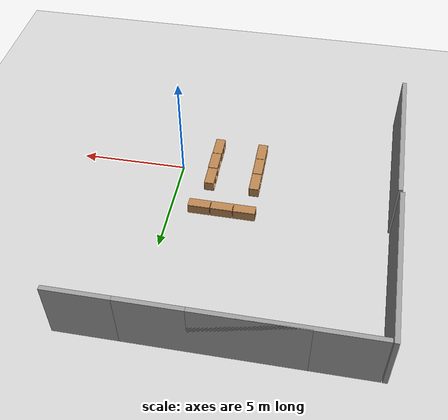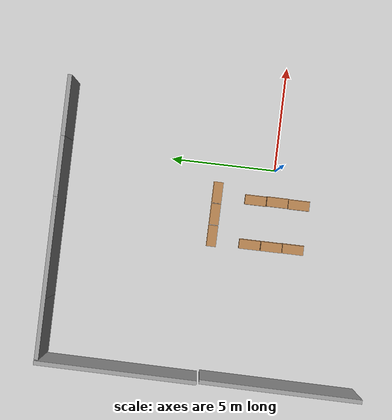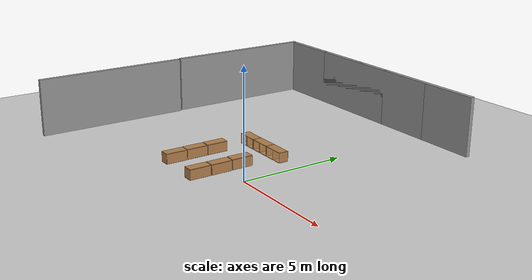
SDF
<sdf version="1.6">
 <world name="default">
  <model name="ground_plane">
   <static>1</static>
   <link name="link">
    <collision name="collision">
     <geometry><plane><normal>0 0 1</normal><size>100 100</size></plane></geometry>
     <surface><friction><ode><mu>100</mu><mu2>50</mu2></ode></friction></surface>
    </collision>
    <visual name="visual">
     <cast_shadows>0</cast_shadows>
     <geometry><plane><normal>0 0 1</normal><size>100 100</size></plane></geometry>
     <material>
      <script><uri>file://media/materials/scripts/gazebo.material</uri><name>Gazebo/Grey</name></script>
     </material>
    </visual>
   </link>
  </model>
  <model name="grey_wall1_clone_0">
   <pose>-6.25 10 0 0 -0 0</pose>
   <static>1</static>
   <link name="grey_wall::link">
    <pose>0 0 1.4 0 -0 0</pose>
    <collision name="collision"><geometry><box><size>7.5 0.2 2.8</size></box></geometry></collision>
    <visual name="visual">
     <cast_shadows>0</cast_shadows>
     <geometry><box><size>7.5 0.2 2.8</size></box></geometry>
     <material>
      <script>
       <uri>model://grey_wall/materials/scripts</uri>
       <uri>model://grey_wall/materials/textures</uri>
       <name>vrc/grey_wall</name>
      </script>
     </material>
    </visual>
   </link>
  </model>
  <model name="grey_wall1_clone_1">
   <pose>-3.45 10 0 0 -0 0</pose>
   <static>1</static>
   <link name="grey_wall::link">
    <pose>0 0 1.4 0 -0 0</pose>
    <collision name="collision"><geometry><box><size>7.5 0.2 2.8</size></box></geometry></collision>
    <visual name="visual">
     <cast_shadows>0</cast_shadows>
     <geometry><box><size>7.5 0.2 2.8</size></box></geometry>
     <material>
      <script>
       <uri>model://grey_wall/materials/scripts</uri>
       <uri>model://grey_wall/materials/textures</uri>
       <name>vrc/grey_wall</name>
      </script>
     </material>
    </visual>
   </link>
  </model>
  <model name="grey_wall1_clone_2">
   <pose>-0.65 10 0 0 -0 0</pose>
   <static>1</static>
   <link name="grey_wall::link">
    <pose>0 0 1.4 0 -0 0</pose>
    <collision name="collision"><geometry><box><size>7.5 0.2 2.8</size></box></geometry></collision>
    <visual name="visual">
     <cast_shadows>0</cast_shadows>
     <geometry><box><size>7.5 0.2 2.8</size></box></geometry>
     <material>
      <script>
       <uri>model://grey_wall/materials/scripts</uri>
       <uri>model://grey_wall/materials/textures</uri>
       <name>vrc/grey_wall</name>
      </script>
     </material>
    </visual>
   </link>
  </model>
  <model name="grey_wall_clone_clone_clone">
   <static>1</static>
   <link name="link">
    <pose>0 0 1.4 0 -0 0</pose>
    <collision name="collision"><geometry><box><size>7.5 0.2 2.8</size></box></geometry></collision>
    <visual name="visual">
     <cast_shadows>0</cast_shadows>
     <geometry><box><size>7.5 0.2 2.8</size></box></geometry>
     <material>
      <script>
       <uri>model://grey_wall/materials/scripts</uri>
       <uri>model://grey_wall/materials/textures</uri>
       <name>vrc/grey_wall</name>
      </script>
     </material>
    </visual>
   </link>
   <pose>-10.1653 6.35833 0 0 -0 1.5647</pose>
  </model>
  <model name="grey_wall_clone_clone_clone_clone">
   <static>1</static>
   <link name="link">
    <pose>0 0 1.4 0 -0 0</pose>
    <collision name="collision"><geometry><box><size>7.5 0.2 2.8</size></box></geometry></collision>
    <visual name="visual">
     <cast_shadows>0</cast_shadows>
     <geometry><box><size>7.5 0.2 2.8</size></box></geometry>
     <material>
      <script>
       <uri>model://grey_wall/materials/scripts</uri>
       <uri>model://grey_wall/materials/textures</uri>
       <name>vrc/grey_wall</name>
      </script>
     </material>
    </visual>
   </link>
   <pose>-10.1357 -1.24273 0 0 -0 1.5647</pose>
  </model>
  <model name="cabinet_clone_4">
   <static>1</static>
   <link name="cabinet_bottom_plate">
    <inertial>
     <pose>0 0 -1 0 -0 0</pose>
     <inertia><ixx>2.05</ixx><ixy>0</ixy><ixz>0</ixz><iyy>2.05</iyy><iyz>0</iyz><izz>2.05</izz></inertia>
     <mass>25</mass>
    </inertial>
    <collision name="cabinet_bottom_plate_geom">
     <pose>0 0 0.01 0 -0 0</pose>
     <geometry><box><size>0.45 0.45 0.02</size></box></geometry>
    </collision>
    <visual name="cabinet_bottom_plate_geom_visual">
     <pose>0 0 0.01 0 -0 0</pose>
     <geometry><box><size>0.45 0.45 0.02</size></box></geometry>
     <material>
      <script><uri>file://media/materials/scripts/gazebo.material</uri><name>Gazebo/Wood</name></script>
     </material>
    </visual>
    <collision name="cabinet_bottom_plate_geom_cabinet_back_plate">
     <pose>0.235 0 0.51 0 -0 0</pose>
     <geometry><box><size>0.02 0.45 1.02</size></box></geometry>
    </collision>
    <visual name="cabinet_bottom_plate_geom_cabinet_back_plate_visual">
     <pose>0.235 0 0.51 0 -0 0</pose>
     <geometry><box><size>0.02 0.45 1.02</size></box></geometry>
     <material>
      <script><uri>file://media/materials/scripts/gazebo.material</uri><name>Gazebo/Wood</name></script>
     </material>
    </visual>
    <collision name="cabinet_bottom_plate_geom_cabinet_left_plate">
     <pose>0 0.235 0.51 0 -0 0</pose>
     <geometry><box><size>0.45 0.02 1.02</size></box></geometry>
    </collision>
    <visual name="cabinet_bottom_plate_geom_cabinet_left_plate_visual">
     <pose>0 0.235 0.51 0 -0 0</pose>
     <geometry><box><size>0.45 0.02 1.02</size></box></geometry>
     <material>
      <script><uri>file://media/materials/scripts/gazebo.material</uri><name>Gazebo/Wood</name></script>
     </material>
    </visual>
    <collision name="cabinet_bottom_plate_geom_cabinet_middle_plate">
     <pose>0 0 0.51 0 -0 0</pose>
     <geometry><box><size>0.45 0.45 0.02</size></box></geometry>
    </collision>
    <visual name="cabinet_bottom_plate_geom_cabinet_middle_plate_visual">
     <pose>0 0 0.51 0 -0 0</pose>
     <geometry><box><size>0.45 0.45 0.02</size></box></geometry>
     <material>
      <script><uri>file://media/materials/scripts/gazebo.material</uri><name>Gazebo/Wood</name></script>
     </material>
    </visual>
    <collision name="cabinet_bottom_plate_geom_cabinet_right_plate">
     <pose>0 -0.235 0.51 0 -0 0</pose>
     <geometry><box><size>0.45 0.02 1.02</size></box></geometry>
    </collision>
    <visual name="cabinet_bottom_plate_geom_cabinet_right_plate_visual">
     <pose>0 -0.235 0.51 0 -0 0</pose>
     <geometry><box><size>0.45 0.02 1.02</size></box></geometry>
     <material>
      <script><uri>file://media/materials/scripts/gazebo.material</uri><name>Gazebo/Wood</name></script>
     </material>
    </visual>
    <collision name="cabinet_bottom_plate_geom_cabinet_top_plate">
     <pose>0 0 1.01 0 -0 0</pose>
     <geometry><box><size>0.45 0.45 0.02</size></box></geometry>
    </collision>
    <visual name="cabinet_bottom_plate_geom_cabinet_top_plate_visual">
     <pose>0 0 1.01 0 -0 0</pose>
     <geometry><box><size>0.45 0.45 0.02</size></box></geometry>
     <material>
      <script><uri>file://media/materials/scripts/gazebo.material</uri><name>Gazebo/Wood</name></script>
     </material>
    </visual>
   </link>
   <pose>-1.53952 0.268414 0.264462 -1.57506 0 0</pose>
  </model>
  <model name="cabinet_clone_5">
   <static>1</static>
   <link name="cabinet_bottom_plate">
    <inertial>
     <pose>0 0 -1 0 -0 0</pose>
     <inertia><ixx>2.05</ixx><ixy>0</ixy><ixz>0</ixz><iyy>2.05</iyy><iyz>0</iyz><izz>2.05</izz></inertia>
     <mass>25</mass>
    </inertial>
    <collision name="cabinet_bottom_plate_geom">
     <pose>0 0 0.01 0 -0 0</pose>
     <geometry><box><size>0.45 0.45 0.02</size></box></geometry>
    </collision>
    <visual name="cabinet_bottom_plate_geom_visual">
     <pose>0 0 0.01 0 -0 0</pose>
     <geometry><box><size>0.45 0.45 0.02</size></box></geometry>
     <material>
      <script><uri>file://media/materials/scripts/gazebo.material</uri><name>Gazebo/Wood</name></script>
     </material>
    </visual>
    <collision name="cabinet_bottom_plate_geom_cabinet_back_plate">
     <pose>0.235 0 0.51 0 -0 0</pose>
     <geometry><box><size>0.02 0.45 1.02</size></box></geometry>
    </collision>
    <visual name="cabinet_bottom_plate_geom_cabinet_back_plate_visual">
     <pose>0.235 0 0.51 0 -0 0</pose>
     <geometry><box><size>0.02 0.45 1.02</size></box></geometry>
     <material>
      <script><uri>file://media/materials/scripts/gazebo.material</uri><name>Gazebo/Wood</name></script>
     </material>
    </visual>
    <collision name="cabinet_bottom_plate_geom_cabinet_left_plate">
     <pose>0 0.235 0.51 0 -0 0</pose>
     <geometry><box><size>0.45 0.02 1.02</size></box></geometry>
    </collision>
    <visual name="cabinet_bottom_plate_geom_cabinet_left_plate_visual">
     <pose>0 0.235 0.51 0 -0 0</pose>
     <geometry><box><size>0.45 0.02 1.02</size></box></geometry>
     <material>
      <script><uri>file://media/materials/scripts/gazebo.material</uri><name>Gazebo/Wood</name></script>
     </material>
    </visual>
    <collision name="cabinet_bottom_plate_geom_cabinet_middle_plate">
     <pose>0 0 0.51 0 -0 0</pose>
     <geometry><box><size>0.45 0.45 0.02</size></box></geometry>
    </collision>
    <visual name="cabinet_bottom_plate_geom_cabinet_middle_plate_visual">
     <pose>0 0 0.51 0 -0 0</pose>
     <geometry><box><size>0.45 0.45 0.02</size></box></geometry>
     <material>
      <script><uri>file://media/materials/scripts/gazebo.material</uri><name>Gazebo/Wood</name></script>
     </material>
    </visual>
    <collision name="cabinet_bottom_plate_geom_cabinet_right_plate">
     <pose>0 -0.235 0.51 0 -0 0</pose>
     <geometry><box><size>0.45 0.02 1.02</size></box></geometry>
    </collision>
    <visual name="cabinet_bottom_plate_geom_cabinet_right_plate_visual">
     <pose>0 -0.235 0.51 0 -0 0</pose>
     <geometry><box><size>0.45 0.02 1.02</size></box></geometry>
     <material>
      <script><uri>file://media/materials/scripts/gazebo.material</uri><name>Gazebo/Wood</name></script>
     </material>
    </visual>
    <collision name="cabinet_bottom_plate_geom_cabinet_top_plate">
     <pose>0 0 1.01 0 -0 0</pose>
     <geometry><box><size>0.45 0.45 0.02</size></box></geometry>
    </collision>
    <visual name="cabinet_bottom_plate_geom_cabinet_top_plate_visual">
     <pose>0 0 1.01 0 -0 0</pose>
     <geometry><box><size>0.45 0.45 0.02</size></box></geometry>
     <material>
      <script><uri>file://media/materials/scripts/gazebo.material</uri><name>Gazebo/Wood</name></script>
     </material>
    </visual>
   </link>
   <pose>-1.52089 -0.784397 0.264462 -1.57506 0 0</pose>
  </model>
  <model name="cabinet_clone_6">
   <static>1</static>
   <link name="cabinet_bottom_plate">
    <inertial>
     <pose>0 0 -1 0 -0 0</pose>
     <inertia><ixx>2.05</ixx><ixy>0</ixy><ixz>0</ixz><iyy>2.05</iyy><iyz>0</iyz><izz>2.05</izz></inertia>
     <mass>25</mass>
    </inertial>
    <collision name="cabinet_bottom_plate_geom">
     <pose>0 0 0.01 0 -0 0</pose>
     <geometry><box><size>0.45 0.45 0.02</size></box></geometry>
    </collision>
    <visual name="cabinet_bottom_plate_geom_visual">
     <pose>0 0 0.01 0 -0 0</pose>
     <geometry><box><size>0.45 0.45 0.02</size></box></geometry>
     <material>
      <script><uri>file://media/materials/scripts/gazebo.material</uri><name>Gazebo/Wood</name></script>
     </material>
    </visual>
    <collision name="cabinet_bottom_plate_geom_cabinet_back_plate">
     <pose>0.235 0 0.51 0 -0 0</pose>
     <geometry><box><size>0.02 0.45 1.02</size></box></geometry>
    </collision>
    <visual name="cabinet_bottom_plate_geom_cabinet_back_plate_visual">
     <pose>0.235 0 0.51 0 -0 0</pose>
     <geometry><box><size>0.02 0.45 1.02</size></box></geometry>
     <material>
      <script><uri>file://media/materials/scripts/gazebo.material</uri><name>Gazebo/Wood</name></script>
     </material>
    </visual>
    <collision name="cabinet_bottom_plate_geom_cabinet_left_plate">
     <pose>0 0.235 0.51 0 -0 0</pose>
     <geometry><box><size>0.45 0.02 1.02</size></box></geometry>
    </collision>
    <visual name="cabinet_bottom_plate_geom_cabinet_left_plate_visual">
     <pose>0 0.235 0.51 0 -0 0</pose>
     <geometry><box><size>0.45 0.02 1.02</size></box></geometry>
     <material>
      <script><uri>file://media/materials/scripts/gazebo.material</uri><name>Gazebo/Wood</name></script>
     </material>
    </visual>
    <collision name="cabinet_bottom_plate_geom_cabinet_middle_plate">
     <pose>0 0 0.51 0 -0 0</pose>
     <geometry><box><size>0.45 0.45 0.02</size></box></geometry>
    </collision>
    <visual name="cabinet_bottom_plate_geom_cabinet_middle_plate_visual">
     <pose>0 0 0.51 0 -0 0</pose>
     <geometry><box><size>0.45 0.45 0.02</size></box></geometry>
     <material>
      <script><uri>file://media/materials/scripts/gazebo.material</uri><name>Gazebo/Wood</name></script>
     </material>
    </visual>
    <collision name="cabinet_bottom_plate_geom_cabinet_right_plate">
     <pose>0 -0.235 0.51 0 -0 0</pose>
     <geometry><box><size>0.45 0.02 1.02</size></box></geometry>
    </collision>
    <visual name="cabinet_bottom_plate_geom_cabinet_right_plate_visual">
     <pose>0 -0.235 0.51 0 -0 0</pose>
     <geometry><box><size>0.45 0.02 1.02</size></box></geometry>
     <material>
      <script><uri>file://media/materials/scripts/gazebo.material</uri><name>Gazebo/Wood</name></script>
     </material>
    </visual>
    <collision name="cabinet_bottom_plate_geom_cabinet_top_plate">
     <pose>0 0 1.01 0 -0 0</pose>
     <geometry><box><size>0.45 0.45 0.02</size></box></geometry>
    </collision>
    <visual name="cabinet_bottom_plate_geom_cabinet_top_plate_visual">
     <pose>0 0 1.01 0 -0 0</pose>
     <geometry><box><size>0.45 0.45 0.02</size></box></geometry>
     <material>
      <script><uri>file://media/materials/scripts/gazebo.material</uri><name>Gazebo/Wood</name></script>
     </material>
    </visual>
   </link>
   <pose>-1.53273 -1.82585 0.264462 -1.57506 0 0</pose>
  </model>
  <model name="cabinet_clone_7">
   <static>1</static>
   <link name="cabinet_bottom_plate">
    <inertial>
     <pose>0 0 -1 0 -0 0</pose>
     <inertia><ixx>2.05</ixx><ixy>0</ixy><ixz>0</ixz><iyy>2.05</iyy><iyz>0</iyz><izz>2.05</izz></inertia>
     <mass>25</mass>
    </inertial>
    <collision name="cabinet_bottom_plate_geom">
     <pose>0 0 0.01 0 -0 0</pose>
     <geometry><box><size>0.45 0.45 0.02</size></box></geometry>
    </collision>
    <visual name="cabinet_bottom_plate_geom_visual">
     <pose>0 0 0.01 0 -0 0</pose>
     <geometry><box><size>0.45 0.45 0.02</size></box></geometry>
     <material>
      <script><uri>file://media/materials/scripts/gazebo.material</uri><name>Gazebo/Wood</name></script>
     </material>
    </visual>
    <collision name="cabinet_bottom_plate_geom_cabinet_back_plate">
     <pose>0.235 0 0.51 0 -0 0</pose>
     <geometry><box><size>0.02 0.45 1.02</size></box></geometry>
    </collision>
    <visual name="cabinet_bottom_plate_geom_cabinet_back_plate_visual">
     <pose>0.235 0 0.51 0 -0 0</pose>
     <geometry><box><size>0.02 0.45 1.02</size></box></geometry>
     <material>
      <script><uri>file://media/materials/scripts/gazebo.material</uri><name>Gazebo/Wood</name></script>
     </material>
    </visual>
    <collision name="cabinet_bottom_plate_geom_cabinet_left_plate">
     <pose>0 0.235 0.51 0 -0 0</pose>
     <geometry><box><size>0.45 0.02 1.02</size></box></geometry>
    </collision>
    <visual name="cabinet_bottom_plate_geom_cabinet_left_plate_visual">
     <pose>0 0.235 0.51 0 -0 0</pose>
     <geometry><box><size>0.45 0.02 1.02</size></box></geometry>
     <material>
      <script><uri>file://media/materials/scripts/gazebo.material</uri><name>Gazebo/Wood</name></script>
     </material>
    </visual>
    <collision name="cabinet_bottom_plate_geom_cabinet_middle_plate">
     <pose>0 0 0.51 0 -0 0</pose>
     <geometry><box><size>0.45 0.45 0.02</size></box></geometry>
    </collision>
    <visual name="cabinet_bottom_plate_geom_cabinet_middle_plate_visual">
     <pose>0 0 0.51 0 -0 0</pose>
     <geometry><box><size>0.45 0.45 0.02</size></box></geometry>
     <material>
      <script><uri>file://media/materials/scripts/gazebo.material</uri><name>Gazebo/Wood</name></script>
     </material>
    </visual>
    <collision name="cabinet_bottom_plate_geom_cabinet_right_plate">
     <pose>0 -0.235 0.51 0 -0 0</pose>
     <geometry><box><size>0.45 0.02 1.02</size></box></geometry>
    </collision>
    <visual name="cabinet_bottom_plate_geom_cabinet_right_plate_visual">
     <pose>0 -0.235 0.51 0 -0 0</pose>
     <geometry><box><size>0.45 0.02 1.02</size></box></geometry>
     <material>
      <script><uri>file://media/materials/scripts/gazebo.material</uri><name>Gazebo/Wood</name></script>
     </material>
    </visual>
    <collision name="cabinet_bottom_plate_geom_cabinet_top_plate">
     <pose>0 0 1.01 0 -0 0</pose>
     <geometry><box><size>0.45 0.45 0.02</size></box></geometry>
    </collision>
    <visual name="cabinet_bottom_plate_geom_cabinet_top_plate_visual">
     <pose>0 0 1.01 0 -0 0</pose>
     <geometry><box><size>0.45 0.45 0.02</size></box></geometry>
     <material>
      <script><uri>file://media/materials/scripts/gazebo.material</uri><name>Gazebo/Wood</name></script>
     </material>
    </visual>
   </link>
   <pose>-3.68914 0.304849 0.264462 -1.57506 0 0</pose>
  </model>
  <model name="cabinet_clone_8">
   <static>1</static>
   <link name="cabinet_bottom_plate">
    <inertial>
     <pose>0 0 -1 0 -0 0</pose>
     <inertia><ixx>2.05</ixx><ixy>0</ixy><ixz>0</ixz><iyy>2.05</iyy><iyz>0</iyz><izz>2.05</izz></inertia>
     <mass>25</mass>
    </inertial>
    <collision name="cabinet_bottom_plate_geom">
     <pose>0 0 0.01 0 -0 0</pose>
     <geometry><box><size>0.45 0.45 0.02</size></box></geometry>
    </collision>
    <visual name="cabinet_bottom_plate_geom_visual">
     <pose>0 0 0.01 0 -0 0</pose>
     <geometry><box><size>0.45 0.45 0.02</size></box></geometry>
     <material>
      <script><uri>file://media/materials/scripts/gazebo.material</uri><name>Gazebo/Wood</name></script>
     </material>
    </visual>
    <collision name="cabinet_bottom_plate_geom_cabinet_back_plate">
     <pose>0.235 0 0.51 0 -0 0</pose>
     <geometry><box><size>0.02 0.45 1.02</size></box></geometry>
    </collision>
    <visual name="cabinet_bottom_plate_geom_cabinet_back_plate_visual">
     <pose>0.235 0 0.51 0 -0 0</pose>
     <geometry><box><size>0.02 0.45 1.02</size></box></geometry>
     <material>
      <script><uri>file://media/materials/scripts/gazebo.material</uri><name>Gazebo/Wood</name></script>
     </material>
    </visual>
    <collision name="cabinet_bottom_plate_geom_cabinet_left_plate">
     <pose>0 0.235 0.51 0 -0 0</pose>
     <geometry><box><size>0.45 0.02 1.02</size></box></geometry>
    </collision>
    <visual name="cabinet_bottom_plate_geom_cabinet_left_plate_visual">
     <pose>0 0.235 0.51 0 -0 0</pose>
     <geometry><box><size>0.45 0.02 1.02</size></box></geometry>
     <material>
      <script><uri>file://media/materials/scripts/gazebo.material</uri><name>Gazebo/Wood</name></script>
     </material>
    </visual>
    <collision name="cabinet_bottom_plate_geom_cabinet_middle_plate">
     <pose>0 0 0.51 0 -0 0</pose>
     <geometry><box><size>0.45 0.45 0.02</size></box></geometry>
    </collision>
    <visual name="cabinet_bottom_plate_geom_cabinet_middle_plate_visual">
     <pose>0 0 0.51 0 -0 0</pose>
     <geometry><box><size>0.45 0.45 0.02</size></box></geometry>
     <material>
      <script><uri>file://media/materials/scripts/gazebo.material</uri><name>Gazebo/Wood</name></script>
     </material>
    </visual>
    <collision name="cabinet_bottom_plate_geom_cabinet_right_plate">
     <pose>0 -0.235 0.51 0 -0 0</pose>
     <geometry><box><size>0.45 0.02 1.02</size></box></geometry>
    </collision>
    <visual name="cabinet_bottom_plate_geom_cabinet_right_plate_visual">
     <pose>0 -0.235 0.51 0 -0 0</pose>
     <geometry><box><size>0.45 0.02 1.02</size></box></geometry>
     <material>
      <script><uri>file://media/materials/scripts/gazebo.material</uri><name>Gazebo/Wood</name></script>
     </material>
    </visual>
    <collision name="cabinet_bottom_plate_geom_cabinet_top_plate">
     <pose>0 0 1.01 0 -0 0</pose>
     <geometry><box><size>0.45 0.45 0.02</size></box></geometry>
    </collision>
    <visual name="cabinet_bottom_plate_geom_cabinet_top_plate_visual">
     <pose>0 0 1.01 0 -0 0</pose>
     <geometry><box><size>0.45 0.45 0.02</size></box></geometry>
     <material>
      <script><uri>file://media/materials/scripts/gazebo.material</uri><name>Gazebo/Wood</name></script>
     </material>
    </visual>
   </link>
   <pose>-3.68719 -0.747923 0.264462 -1.57506 0 0</pose>
  </model>
  <model name="cabinet_clone_9">
   <static>1</static>
   <link name="cabinet_bottom_plate">
    <inertial>
     <pose>0 0 -1 0 -0 0</pose>
     <inertia><ixx>2.05</ixx><ixy>0</ixy><ixz>0</ixz><iyy>2.05</iyy><iyz>0</iyz><izz>2.05</izz></inertia>
     <mass>25</mass>
    </inertial>
    <collision name="cabinet_bottom_plate_geom">
     <pose>0 0 0.01 0 -0 0</pose>
     <geometry><box><size>0.45 0.45 0.02</size></box></geometry>
    </collision>
    <visual name="cabinet_bottom_plate_geom_visual">
     <pose>0 0 0.01 0 -0 0</pose>
     <geometry><box><size>0.45 0.45 0.02</size></box></geometry>
     <material>
      <script><uri>file://media/materials/scripts/gazebo.material</uri><name>Gazebo/Wood</name></script>
     </material>
    </visual>
    <collision name="cabinet_bottom_plate_geom_cabinet_back_plate">
     <pose>0.235 0 0.51 0 -0 0</pose>
     <geometry><box><size>0.02 0.45 1.02</size></box></geometry>
    </collision>
    <visual name="cabinet_bottom_plate_geom_cabinet_back_plate_visual">
     <pose>0.235 0 0.51 0 -0 0</pose>
     <geometry><box><size>0.02 0.45 1.02</size></box></geometry>
     <material>
      <script><uri>file://media/materials/scripts/gazebo.material</uri><name>Gazebo/Wood</name></script>
     </material>
    </visual>
    <collision name="cabinet_bottom_plate_geom_cabinet_left_plate">
     <pose>0 0.235 0.51 0 -0 0</pose>
     <geometry><box><size>0.45 0.02 1.02</size></box></geometry>
    </collision>
    <visual name="cabinet_bottom_plate_geom_cabinet_left_plate_visual">
     <pose>0 0.235 0.51 0 -0 0</pose>
     <geometry><box><size>0.45 0.02 1.02</size></box></geometry>
     <material>
      <script><uri>file://media/materials/scripts/gazebo.material</uri><name>Gazebo/Wood</name></script>
     </material>
    </visual>
    <collision name="cabinet_bottom_plate_geom_cabinet_middle_plate">
     <pose>0 0 0.51 0 -0 0</pose>
     <geometry><box><size>0.45 0.45 0.02</size></box></geometry>
    </collision>
    <visual name="cabinet_bottom_plate_geom_cabinet_middle_plate_visual">
     <pose>0 0 0.51 0 -0 0</pose>
     <geometry><box><size>0.45 0.45 0.02</size></box></geometry>
     <material>
      <script><uri>file://media/materials/scripts/gazebo.material</uri><name>Gazebo/Wood</name></script>
     </material>
    </visual>
    <collision name="cabinet_bottom_plate_geom_cabinet_right_plate">
     <pose>0 -0.235 0.51 0 -0 0</pose>
     <geometry><box><size>0.45 0.02 1.02</size></box></geometry>
    </collision>
    <visual name="cabinet_bottom_plate_geom_cabinet_right_plate_visual">
     <pose>0 -0.235 0.51 0 -0 0</pose>
     <geometry><box><size>0.45 0.02 1.02</size></box></geometry>
     <material>
      <script><uri>file://media/materials/scripts/gazebo.material</uri><name>Gazebo/Wood</name></script>
     </material>
    </visual>
    <collision name="cabinet_bottom_plate_geom_cabinet_top_plate">
     <pose>0 0 1.01 0 -0 0</pose>
     <geometry><box><size>0.45 0.45 0.02</size></box></geometry>
    </collision>
    <visual name="cabinet_bottom_plate_geom_cabinet_top_plate_visual">
     <pose>0 0 1.01 0 -0 0</pose>
     <geometry><box><size>0.45 0.45 0.02</size></box></geometry>
     <material>
      <script><uri>file://media/materials/scripts/gazebo.material</uri><name>Gazebo/Wood</name></script>
     </material>
    </visual>
   </link>
   <pose>-3.67903 -1.78976 0.264462 -1.57506 0 0</pose>
  </model>
  <model name="cabinet_clone_10_clone_6">
   <static>1</static>
   <link name="cabinet_bottom_plate">
    <inertial>
     <pose>0 0 -1 0 -0 0</pose>
     <inertia><ixx>2.05</ixx><ixy>0</ixy><ixz>0</ixz><iyy>2.05</iyy><iyz>0</iyz><izz>2.05</izz></inertia>
     <mass>25</mass>
    </inertial>
    <collision name="cabinet_bottom_plate_geom">
     <pose>0 0 0.01 0 -0 0</pose>
     <geometry><box><size>0.45 0.45 0.02</size></box></geometry>
    </collision>
    <visual name="cabinet_bottom_plate_geom_visual">
     <pose>0 0 0.01 0 -0 0</pose>
     <geometry><box><size>0.45 0.45 0.02</size></box></geometry>
     <material>
      <script><uri>file://media/materials/scripts/gazebo.material</uri><name>Gazebo/Wood</name></script>
     </material>
    </visual>
    <collision name="cabinet_bottom_plate_geom_cabinet_back_plate">
     <pose>0.235 0 0.51 0 -0 0</pose>
     <geometry><box><size>0.02 0.45 1.02</size></box></geometry>
    </collision>
    <visual name="cabinet_bottom_plate_geom_cabinet_back_plate_visual">
     <pose>0.235 0 0.51 0 -0 0</pose>
     <geometry><box><size>0.02 0.45 1.02</size></box></geometry>
     <material>
      <script><uri>file://media/materials/scripts/gazebo.material</uri><name>Gazebo/Wood</name></script>
     </material>
    </visual>
    <collision name="cabinet_bottom_plate_geom_cabinet_left_plate">
     <pose>0 0.235 0.51 0 -0 0</pose>
     <geometry><box><size>0.45 0.02 1.02</size></box></geometry>
    </collision>
    <visual name="cabinet_bottom_plate_geom_cabinet_left_plate_visual">
     <pose>0 0.235 0.51 0 -0 0</pose>
     <geometry><box><size>0.45 0.02 1.02</size></box></geometry>
     <material>
      <script><uri>file://media/materials/scripts/gazebo.material</uri><name>Gazebo/Wood</name></script>
     </material>
    </visual>
    <collision name="cabinet_bottom_plate_geom_cabinet_middle_plate">
     <pose>0 0 0.51 0 -0 0</pose>
     <geometry><box><size>0.45 0.45 0.02</size></box></geometry>
    </collision>
    <visual name="cabinet_bottom_plate_geom_cabinet_middle_plate_visual">
     <pose>0 0 0.51 0 -0 0</pose>
     <geometry><box><size>0.45 0.45 0.02</size></box></geometry>
     <material>
      <script><uri>file://media/materials/scripts/gazebo.material</uri><name>Gazebo/Wood</name></script>
     </material>
    </visual>
    <collision name="cabinet_bottom_plate_geom_cabinet_right_plate">
     <pose>0 -0.235 0.51 0 -0 0</pose>
     <geometry><box><size>0.45 0.02 1.02</size></box></geometry>
    </collision>
    <visual name="cabinet_bottom_plate_geom_cabinet_right_plate_visual">
     <pose>0 -0.235 0.51 0 -0 0</pose>
     <geometry><box><size>0.45 0.02 1.02</size></box></geometry>
     <material>
      <script><uri>file://media/materials/scripts/gazebo.material</uri><name>Gazebo/Wood</name></script>
     </material>
    </visual>
    <collision name="cabinet_bottom_plate_geom_cabinet_top_plate">
     <pose>0 0 1.01 0 -0 0</pose>
     <geometry><box><size>0.45 0.45 0.02</size></box></geometry>
    </collision>
    <visual name="cabinet_bottom_plate_geom_cabinet_top_plate_visual">
     <pose>0 0 1.01 0 -0 0</pose>
     <geometry><box><size>0.45 0.45 0.02</size></box></geometry>
     <material>
      <script><uri>file://media/materials/scripts/gazebo.material</uri><name>Gazebo/Wood</name></script>
     </material>
    </visual>
   </link>
   <pose>-2.96266 2.64651 0.264462 -1.57082 0.004264 1.56552</pose>
  </model>
  <model name="cabinet_clone_10_clone_7">
   <static>1</static>
   <link name="cabinet_bottom_plate">
    <inertial>
     <pose>0 0 -1 0 -0 0</pose>
     <inertia><ixx>2.05</ixx><ixy>0</ixy><ixz>0</ixz><iyy>2.05</iyy><iyz>0</iyz><izz>2.05</izz></inertia>
     <mass>25</mass>
    </inertial>
    <collision name="cabinet_bottom_plate_geom">
     <pose>0 0 0.01 0 -0 0</pose>
     <geometry><box><size>0.45 0.45 0.02</size></box></geometry>
    </collision>
    <visual name="cabinet_bottom_plate_geom_visual">
     <pose>0 0 0.01 0 -0 0</pose>
     <geometry><box><size>0.45 0.45 0.02</size></box></geometry>
     <material>
      <script><uri>file://media/materials/scripts/gazebo.material</uri><name>Gazebo/Wood</name></script>
     </material>
    </visual>
    <collision name="cabinet_bottom_plate_geom_cabinet_back_plate">
     <pose>0.235 0 0.51 0 -0 0</pose>
     <geometry><box><size>0.02 0.45 1.02</size></box></geometry>
    </collision>
    <visual name="cabinet_bottom_plate_geom_cabinet_back_plate_visual">
     <pose>0.235 0 0.51 0 -0 0</pose>
     <geometry><box><size>0.02 0.45 1.02</size></box></geometry>
     <material>
      <script><uri>file://media/materials/scripts/gazebo.material</uri><name>Gazebo/Wood</name></script>
     </material>
    </visual>
    <collision name="cabinet_bottom_plate_geom_cabinet_left_plate">
     <pose>0 0.235 0.51 0 -0 0</pose>
     <geometry><box><size>0.45 0.02 1.02</size></box></geometry>
    </collision>
    <visual name="cabinet_bottom_plate_geom_cabinet_left_plate_visual">
     <pose>0 0.235 0.51 0 -0 0</pose>
     <geometry><box><size>0.45 0.02 1.02</size></box></geometry>
     <material>
      <script><uri>file://media/materials/scripts/gazebo.material</uri><name>Gazebo/Wood</name></script>
     </material>
    </visual>
    <collision name="cabinet_bottom_plate_geom_cabinet_middle_plate">
     <pose>0 0 0.51 0 -0 0</pose>
     <geometry><box><size>0.45 0.45 0.02</size></box></geometry>
    </collision>
    <visual name="cabinet_bottom_plate_geom_cabinet_middle_plate_visual">
     <pose>0 0 0.51 0 -0 0</pose>
     <geometry><box><size>0.45 0.45 0.02</size></box></geometry>
     <material>
      <script><uri>file://media/materials/scripts/gazebo.material</uri><name>Gazebo/Wood</name></script>
     </material>
    </visual>
    <collision name="cabinet_bottom_plate_geom_cabinet_right_plate">
     <pose>0 -0.235 0.51 0 -0 0</pose>
     <geometry><box><size>0.45 0.02 1.02</size></box></geometry>
    </collision>
    <visual name="cabinet_bottom_plate_geom_cabinet_right_plate_visual">
     <pose>0 -0.235 0.51 0 -0 0</pose>
     <geometry><box><size>0.45 0.02 1.02</size></box></geometry>
     <material>
      <script><uri>file://media/materials/scripts/gazebo.material</uri><name>Gazebo/Wood</name></script>
     </material>
    </visual>
    <collision name="cabinet_bottom_plate_geom_cabinet_top_plate">
     <pose>0 0 1.01 0 -0 0</pose>
     <geometry><box><size>0.45 0.45 0.02</size></box></geometry>
    </collision>
    <visual name="cabinet_bottom_plate_geom_cabinet_top_plate_visual">
     <pose>0 0 1.01 0 -0 0</pose>
     <geometry><box><size>0.45 0.45 0.02</size></box></geometry>
     <material>
      <script><uri>file://media/materials/scripts/gazebo.material</uri><name>Gazebo/Wood</name></script>
     </material>
    </visual>
   </link>
   <pose>-1.91389 2.63935 0.264462 -1.57082 0.004264 1.56552</pose>
  </model>
  <model name="cabinet_clone_10_clone_8">
   <static>1</static>
   <link name="cabinet_bottom_plate">
    <inertial>
     <pose>0 0 -1 0 -0 0</pose>
     <inertia><ixx>2.05</ixx><ixy>0</ixy><ixz>0</ixz><iyy>2.05</iyy><iyz>0</iyz><izz>2.05</izz></inertia>
     <mass>25</mass>
    </inertial>
    <collision name="cabinet_bottom_plate_geom">
     <pose>0 0 0.01 0 -0 0</pose>
     <geometry><box><size>0.45 0.45 0.02</size></box></geometry>
    </collision>
    <visual name="cabinet_bottom_plate_geom_visual">
     <pose>0 0 0.01 0 -0 0</pose>
     <geometry><box><size>0.45 0.45 0.02</size></box></geometry>
     <material>
      <script><uri>file://media/materials/scripts/gazebo.material</uri><name>Gazebo/Wood</name></script>
     </material>
    </visual>
    <collision name="cabinet_bottom_plate_geom_cabinet_back_plate">
     <pose>0.235 0 0.51 0 -0 0</pose>
     <geometry><box><size>0.02 0.45 1.02</size></box></geometry>
    </collision>
    <visual name="cabinet_bottom_plate_geom_cabinet_back_plate_visual">
     <pose>0.235 0 0.51 0 -0 0</pose>
     <geometry><box><size>0.02 0.45 1.02</size></box></geometry>
     <material>
      <script><uri>file://media/materials/scripts/gazebo.material</uri><name>Gazebo/Wood</name></script>
     </material>
    </visual>
    <collision name="cabinet_bottom_plate_geom_cabinet_left_plate">
     <pose>0 0.235 0.51 0 -0 0</pose>
     <geometry><box><size>0.45 0.02 1.02</size></box></geometry>
    </collision>
    <visual name="cabinet_bottom_plate_geom_cabinet_left_plate_visual">
     <pose>0 0.235 0.51 0 -0 0</pose>
     <geometry><box><size>0.45 0.02 1.02</size></box></geometry>
     <material>
      <script><uri>file://media/materials/scripts/gazebo.material</uri><name>Gazebo/Wood</name></script>
     </material>
    </visual>
    <collision name="cabinet_bottom_plate_geom_cabinet_middle_plate">
     <pose>0 0 0.51 0 -0 0</pose>
     <geometry><box><size>0.45 0.45 0.02</size></box></geometry>
    </collision>
    <visual name="cabinet_bottom_plate_geom_cabinet_middle_plate_visual">
     <pose>0 0 0.51 0 -0 0</pose>
     <geometry><box><size>0.45 0.45 0.02</size></box></geometry>
     <material>
      <script><uri>file://media/materials/scripts/gazebo.material</uri><name>Gazebo/Wood</name></script>
     </material>
    </visual>
    <collision name="cabinet_bottom_plate_geom_cabinet_right_plate">
     <pose>0 -0.235 0.51 0 -0 0</pose>
     <geometry><box><size>0.45 0.02 1.02</size></box></geometry>
    </collision>
    <visual name="cabinet_bottom_plate_geom_cabinet_right_plate_visual">
     <pose>0 -0.235 0.51 0 -0 0</pose>
     <geometry><box><size>0.45 0.02 1.02</size></box></geometry>
     <material>
      <script><uri>file://media/materials/scripts/gazebo.material</uri><name>Gazebo/Wood</name></script>
     </material>
    </visual>
    <collision name="cabinet_bottom_plate_geom_cabinet_top_plate">
     <pose>0 0 1.01 0 -0 0</pose>
     <geometry><box><size>0.45 0.45 0.02</size></box></geometry>
    </collision>
    <visual name="cabinet_bottom_plate_geom_cabinet_top_plate_visual">
     <pose>0 0 1.01 0 -0 0</pose>
     <geometry><box><size>0.45 0.45 0.02</size></box></geometry>
     <material>
      <script><uri>file://media/materials/scripts/gazebo.material</uri><name>Gazebo/Wood</name></script>
     </material>
    </visual>
   </link>
   <pose>-0.862091 2.63375 0.264462 -1.57082 0.004264 1.56552</pose>
  </model>
 </world>
</sdf>
